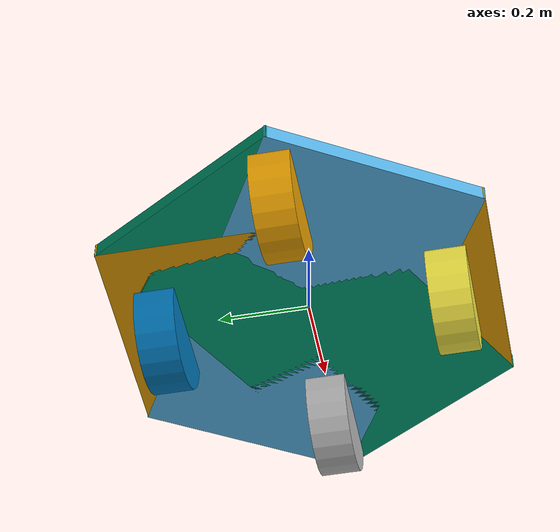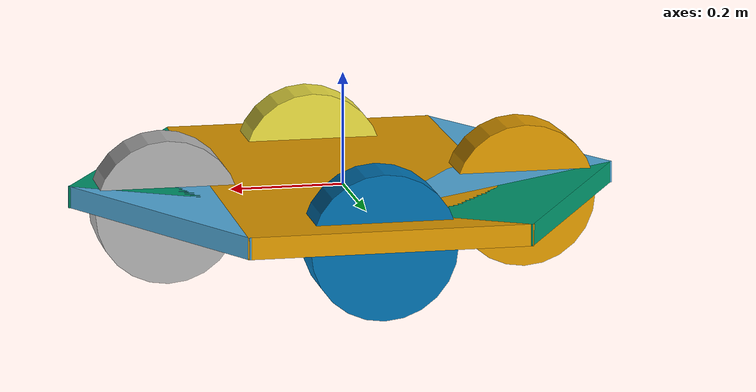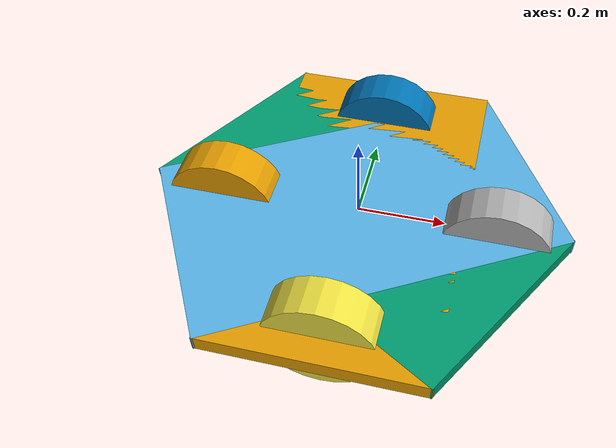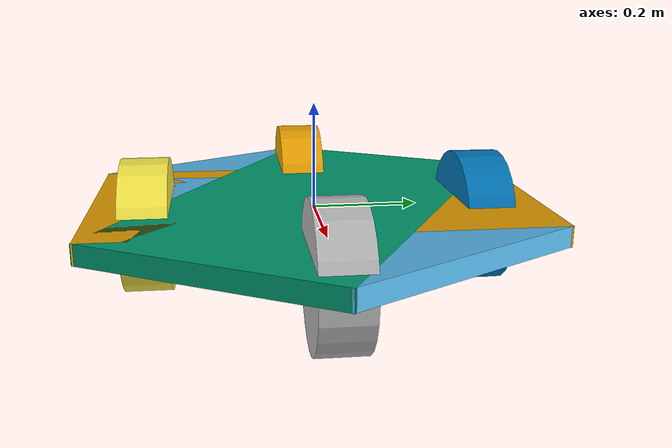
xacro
<?xml version="1.0"?>
<robot xmlns:xacro="http://www.ros.org/wiki/xacro" name="myfirst">

  <link name="base_link">
    <visual>
      <geometry>
        <box size = "0.4878 0.8382 0.0381"/>
      </geometry>
    </visual>
    <collision>
        <geometry>
        <box size = "0.4878 0.8382 0.0381"/>
        </geometry>
    </collision>
    <inertial>
      <mass value="10"/>
      <inertia ixx="0.4" ixy="0.0" ixz="0.0" iyy="0.4" iyz="0.0" izz="0.2"/>
    </inertial>
  </link>

  <link name="link_rotate1">
    <visual>
      <geometry>
        <box size = "0.4878 0.8382 0.0381"/>
      </geometry>
      <origin rpy = "0 0 2.094"/>
    </visual>
    <collision>
        <geometry>
        <box size = "0.4878 0.8382 0.0381"/>
        </geometry>
    </collision>
    <inertial>
      <mass value="10"/>
      <inertia ixx="0.4" ixy="0.0" ixz="0.0" iyy="0.4" iyz="0.0" izz="0.2"/>
    </inertial>
  </link>

  <link name="link_rotate2">
    <visual>
      <geometry>
        <box size = "0.4878 0.8382 0.0381"/>
      </geometry>
      <origin rpy = "0 0 -2.094"/>
    </visual>
    <collision>
        <geometry>
        <box size = "0.4878 0.8382 0.0381"/>
        </geometry>
    </collision>
    <inertial>
      <mass value="10"/>
      <inertia ixx="0.4" ixy="0.0" ixz="0.0" iyy="0.4" iyz="0.0" izz="0.2"/>
    </inertial>
  </link>

  <joint name = "base_to_rotate_1" type = "fixed">
    <parent link = "base_link"/>
    <child link = "link_rotate1"/>
    <origin xyz = "0 0 0"/>
  </joint>

  <joint name = "base_to_rotate_2" type = "fixed">
    <parent link = "base_link"/>
    <child link = "link_rotate2"/>
    <origin xyz = "0 0 0"/>
  </joint>

  <link name ="wheel_left">
    <visual>
        <geometry>
            <cylinder radius = "0.127" length = "0.0889"/>
        </geometry>
        <origin xyz = "0 -0.3175 0" rpy = "1.5708 0 0"/>
    </visual>
    <collision>
    <geometry>
            <cylinder radius = "0.127" length = "0.0889"/>
        </geometry>
    </collision>
    <inertial>
      <mass value="10"/>
      <inertia ixx="0.4" ixy="0.0" ixz="0.0" iyy="0.4" iyz="0.0" izz="0.2"/>
    </inertial>
  </link>

    <link name ="wheel_right">
    <visual>
        <geometry>
            <cylinder radius = "0.127" length = "0.0889"/>
        </geometry>
        <origin xyz = "0 0.3175 0" rpy = "1.5708 0 0"/>
    </visual>
    <collision>
        <geometry>
            <cylinder radius = "0.127" length = "0.0889"/>
        </geometry>
    </collision>
    <inertial>
      <mass value="10"/>
      <inertia ixx="0.4" ixy="0.0" ixz="0.0" iyy="0.4" iyz="0.0" izz="0.2"/>
    </inertial>
  </link>

  <link name ="c_front">
    <inertial>
      <mass value="10"/>
      <inertia ixx="0.4" ixy="0.0" ixz="0.0" iyy="0.4" iyz="0.0" izz="0.2"/>
    </inertial>
  </link>

  <link name ="c_back">
    <inertial>
      <mass value="10"/>
      <inertia ixx="0.4" ixy="0.0" ixz="0.0" iyy="0.4" iyz="0.0" izz="0.2"/>
    </inertial>
  </link>

<link name ="c_front_2">
    <visual>
        <geometry>
            <cylinder radius = "0.127" length = "0.0889"/>
        </geometry>
        <origin xyz = "0 0 0" rpy = "1.5708 0 0"/>
    </visual>
    <collision>
    <geometry>
            <cylinder radius = "0.127" length = "0.0889"/>
        </geometry>
    </collision>
    <inertial>
      <mass value="10"/>
      <inertia ixx="0.4" ixy="0.0" ixz="0.0" iyy="0.4" iyz="0.0" izz="0.2"/>
    </inertial>
  </link>

  <link name ="c_back_2">
    <visual>
        <geometry>
            <cylinder radius = "0.127" length = "0.0889"/>
        </geometry>
        <origin xyz = "0 0 0" rpy = "1.5708 0 0"/>
    </visual>
    <collision>
        <geometry>
            <cylinder radius = "0.127" length = "0.0889"/>
        </geometry>
    </collision>
    <inertial>
      <mass value="10"/>
      <inertia ixx="0.4" ixy="0.0" ixz="0.0" iyy="0.4" iyz="0.0" izz="0.2"/>
    </inertial>
  </link>

<link name ="c_connect_front">
    <visual>
        <geometry>
            <cylinder radius = "0.0" length = "0.0"/>
        </geometry>
        <origin xyz = "0.0 0 0" rpy = "1.5708 0 0"/>
    </visual>
    <collision>
    <geometry>
            <cylinder radius = "0" length = "0"/>
        </geometry>
    </collision>
    <inertial>
      <mass value="10"/>
      <inertia ixx="0.4" ixy="0.0" ixz="0.0" iyy="0.4" iyz="0.0" izz="0.2"/>
    </inertial>
  </link>

<joint name = "connect_c_front_joint" type = "fixed">
  <parent link = "base_link"/>
  <child link = "c_connect_front"/>
  <origin xyz = "0.3175 0 -0.0254"/>
</joint>

<joint name = "joint_c_front" type = "continuous">
  <parent link = "c_connect_front"/>
  <child link = "c_front"/>
  <origin xyz = "0.0 0 0"/>
  <axis xyz = "0 1 0"/>
</joint>

 <link name ="c_connect_back">
    <visual>
        <geometry>
            <cylinder radius = "0.127" length = "0.0889"/>
        </geometry>
        <origin xyz = "0 0 0" rpy = "1.5708 0 0"/>
    </visual>
    <collision>
        <geometry>
            <cylinder radius = "0.127" length = "0.0889"/>
        </geometry>
    </collision>
    <inertial>
      <mass value="10"/>
      <inertia ixx="0.4" ixy="0.0" ixz="0.0" iyy="0.4" iyz="0.0" izz="0.2"/>
    </inertial>
  </link>

<joint name = "joint_c_back_connect" type = "fixed">
  <parent link = "base_link"/>
  <child link = "c_connect_back"/>
  <origin xyz = "-0.3175 0 -0.0254"/>
  <axis xyz = "0 1 0"/>
</joint>

<joint name = "joint_c_back" type = "continuous">
  <parent link = "c_connect_back"/>
  <child link = "c_back"/>
  <origin xyz = "0 0 0"/>
  <axis xyz = "0 1 0"/>
</joint>

<joint name = "joint_c_front_2" type = "continuous">
  <parent link = "c_connect_front"/>
  <child link = "c_front_2"/>
  <origin xyz = "0 0 0"/>
  <axis xyz = "0 0 1"/>
</joint>

<joint name = "joint_c_back_2" type = "continuous">
  <parent link = "c_connect_back"/>
  <child link = "c_back_2"/>
  <origin xyz = "0 0 0"/>
  <axis xyz = "0 0 1"/>
</joint>

<joint name = "w_left" type = "continuous">
    <parent link = "base_link"/>
    <child link = "wheel_left"/>
    <origin xyz = "0 0 -0.0254"/>
    <axis xyz = "0 1 0"/>
</joint>

<joint name = "w_right" type = "continuous">
    <parent link = "base_link"/>
    <child link = "wheel_right"/>
    <origin xyz = "0 0 -0.0254"/>
    <axis xyz = "0 1 0"/>
</joint>

  <!-- This block connects the head_swivel joint to an actuator (motor), which informs both -->

  <transmission name="front_joint_transmission">
    <type>transmission_interface/SimpleTransmission</type>
    <actuator name="$front_joint_transmission">
      <mechanicalReduction>1</mechanicalReduction>
    </actuator>
    <joint name="joint_c_front">
      <hardwareInterface>PositionJointInterface</hardwareInterface>
    </joint>
  </transmission>

 <gazebo>
    <plugin name="gazebo_ros_control" filename="libgazebo_ros_control.so">
      <robotNamespace>/</robotNamespace>
    </plugin>
  </gazebo>

</robot>
